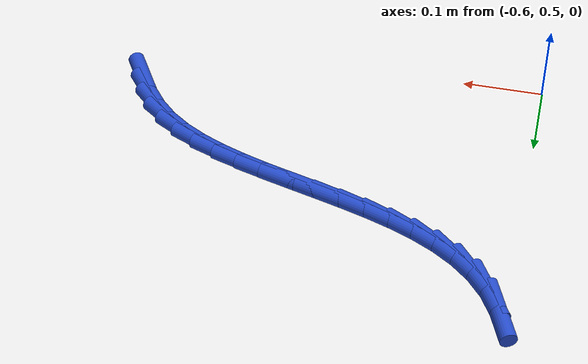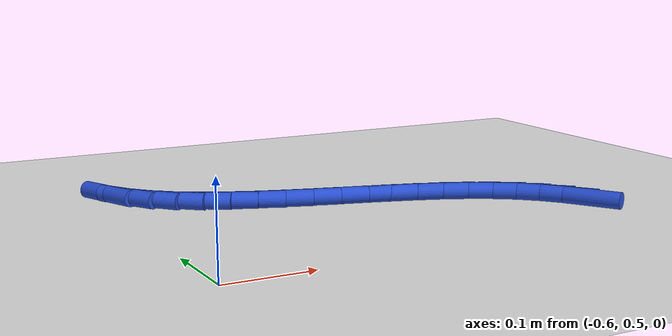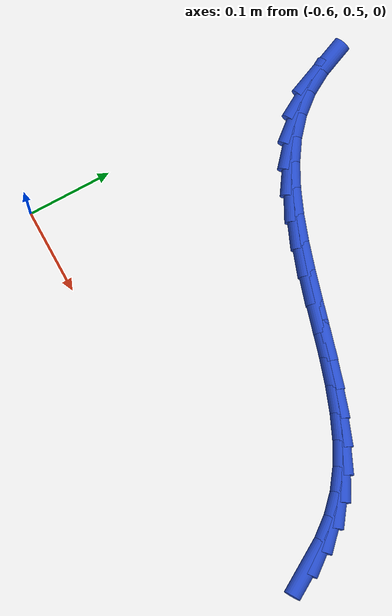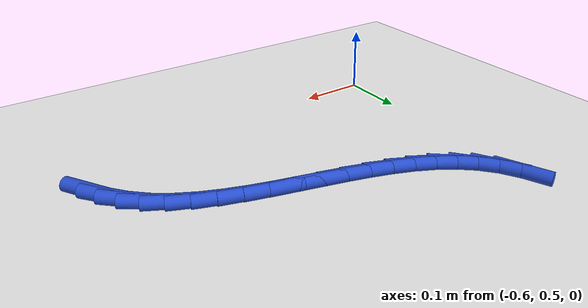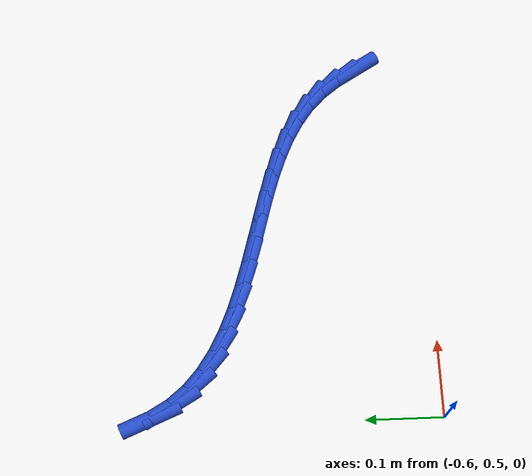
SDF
<sdf version="1.6">
 <world name="default">
  <model name="ground_plane">
   <static>1</static>
   <link name="link">
    <collision name="collision">
     <geometry><plane><normal>0 0 1</normal><size>100 100</size></plane></geometry>
     <surface><friction><ode><mu>100</mu><mu2>50</mu2></ode></friction></surface>
    </collision>
    <visual name="visual">
     <cast_shadows>0</cast_shadows>
     <geometry><plane><normal>0 0 1</normal><size>100 100</size></plane></geometry>
     <material>
      <script><uri>file://media/materials/scripts/gazebo.material</uri><name>Gazebo/WhiteGlow</name></script>
     </material>
    </visual>
   </link>
  </model>
  <model name="line">
   <link name="link_19">
    <pose>-0.10426457547401001 0.5849099175474333 0.01 0 1.57 -1.0160486485261653</pose>
    <collision name="collision">
     <geometry><cylinder><radius>0.01</radius><length>0.08</length></cylinder></geometry>
    </collision>
    <visual name="visual">
     <material>
      <script><name>Gazebo/Blue</name><uri>file://media/materials/scripts/gazebo.material</uri></script>
     </material>
     <geometry><cylinder><radius>0.01</radius><length>0.08</length></cylinder></geometry>
    </visual>
   </link>
   <link name="link_20">
    <pose>-0.11935501939416912 0.6092628294881497 0.01 0 1.57 -0.8951726852559022</pose>
    <collision name="collision">
     <geometry><cylinder><radius>0.01</radius><length>0.08</length></cylinder></geometry>
    </collision>
    <visual name="visual">
     <material>
      <script><name>Gazebo/Blue</name><uri>file://media/materials/scripts/gazebo.material</uri></script>
     </material>
     <geometry><cylinder><radius>0.01</radius><length>0.08</length></cylinder></geometry>
    </visual>
   </link>
   <link name="link_21">
    <pose>-0.1370045280021883 0.6312848375143887 0.01 0 1.57 -0.7589405687826736</pose>
    <collision name="collision">
     <geometry><cylinder><radius>0.01</radius><length>0.08</length></cylinder></geometry>
    </collision>
    <visual name="visual">
     <material>
      <script><name>Gazebo/Blue</name><uri>file://media/materials/scripts/gazebo.material</uri></script>
     </material>
     <geometry><cylinder><radius>0.01</radius><length>0.08</length></cylinder></geometry>
    </visual>
   </link>
   <link name="link_22">
    <pose>-0.15747717167615702 0.65070185049639 0.01 0 1.57 -0.6186227134365173</pose>
    <collision name="collision">
     <geometry><cylinder><radius>0.01</radius><length>0.08</length></cylinder></geometry>
    </collision>
    <visual name="visual">
     <material>
      <script><name>Gazebo/Blue</name><uri>file://media/materials/scripts/gazebo.material</uri></script>
     </material>
     <geometry><cylinder><radius>0.01</radius><length>0.08</length></cylinder></geometry>
    </visual>
   </link>
   <link name="link_23">
    <pose>-0.18089931364129738 0.6673744760878453 0.01 0 1.57 -0.501227249246571</pose>
    <collision name="collision">
     <geometry><cylinder><radius>0.01</radius><length>0.08</length></cylinder></geometry>
    </collision>
    <visual name="visual">
     <material>
      <script><name>Gazebo/Blue</name><uri>file://media/materials/scripts/gazebo.material</uri></script>
     </material>
     <geometry><cylinder><radius>0.01</radius><length>0.08</length></cylinder></geometry>
    </visual>
   </link>
   <link name="link_24">
    <pose>-0.2069193954601897 0.6816308028626623 0.01 0 1.57 -0.4108660897879239</pose>
    <collision name="collision">
     <geometry><cylinder><radius>0.01</radius><length>0.08</length></cylinder></geometry>
    </collision>
    <visual name="visual">
     <material>
      <script><name>Gazebo/Blue</name><uri>file://media/materials/scripts/gazebo.material</uri></script>
     </material>
     <geometry><cylinder><radius>0.01</radius><length>0.08</length></cylinder></geometry>
    </visual>
   </link>
   <link name="link_25">
    <pose>-0.23508224733027594 0.6939002672517421 0.01 0 1.57 -0.34454319343561757</pose>
    <collision name="collision">
     <geometry><cylinder><radius>0.01</radius><length>0.08</length></cylinder></geometry>
    </collision>
    <visual name="visual">
     <material>
      <script><name>Gazebo/Blue</name><uri>file://media/materials/scripts/gazebo.material</uri></script>
     </material>
     <geometry><cylinder><radius>0.01</radius><length>0.08</length></cylinder></geometry>
    </visual>
   </link>
   <link name="link_26">
    <pose>-0.2649326994489988 0.704612305685987 0.01 0 1.57 -0.29908911575729025</pose>
    <collision name="collision">
     <geometry><cylinder><radius>0.01</radius><length>0.08</length></cylinder></geometry>
    </collision>
    <visual name="visual">
     <material>
      <script><name>Gazebo/Blue</name><uri>file://media/materials/scripts/gazebo.material</uri></script>
     </material>
     <geometry><cylinder><radius>0.01</radius><length>0.08</length></cylinder></geometry>
    </visual>
   </link>
   <link name="link_27">
    <pose>-0.29601558201380035 0.7141963545962977 0.01 0 1.57 -0.2719797004035659</pose>
    <collision name="collision">
     <geometry><cylinder><radius>0.01</radius><length>0.08</length></cylinder></geometry>
    </collision>
    <visual name="visual">
     <material>
      <script><name>Gazebo/Blue</name><uri>file://media/materials/scripts/gazebo.material</uri></script>
     </material>
     <geometry><cylinder><radius>0.01</radius><length>0.08</length></cylinder></geometry>
    </visual>
   </link>
   <link name="link_28">
    <pose>-0.32787572522212294 0.7230818504135762 0.01 0 1.57 -0.26160152540919646</pose>
    <collision name="collision">
     <geometry><cylinder><radius>0.01</radius><length>0.08</length></cylinder></geometry>
    </collision>
    <visual name="visual">
     <material>
      <script><name>Gazebo/Blue</name><uri>file://media/materials/scripts/gazebo.material</uri></script>
     </material>
     <geometry><cylinder><radius>0.01</radius><length>0.08</length></cylinder></geometry>
    </visual>
   </link>
   <link name="link_29">
    <pose>-0.36005795927140893 0.7316982295687235 0.01 0 1.57 -0.2672978482801051</pose>
    <collision name="collision">
     <geometry><cylinder><radius>0.01</radius><length>0.08</length></cylinder></geometry>
    </collision>
    <visual name="visual">
     <material>
      <script><name>Gazebo/Blue</name><uri>file://media/materials/scripts/gazebo.material</uri></script>
     </material>
     <geometry><cylinder><radius>0.01</radius><length>0.08</length></cylinder></geometry>
    </visual>
   </link>
   <link name="link_30">
    <pose>-0.3921071143591007 0.7404749284926415 0.01 0 1.57 -0.28936123270137243</pose>
    <collision name="collision">
     <geometry><cylinder><radius>0.01</radius><length>0.08</length></cylinder></geometry>
    </collision>
    <visual name="visual">
     <material>
      <script><name>Gazebo/Blue</name><uri>file://media/materials/scripts/gazebo.material</uri></script>
     </material>
     <geometry><cylinder><radius>0.01</radius><length>0.08</length></cylinder></geometry>
    </visual>
   </link>
   <link name="link_31">
    <pose>-0.4235680206826404 0.7498413836162315 0.01 0 1.57 -0.3290258023512551</pose>
    <collision name="collision">
     <geometry><cylinder><radius>0.01</radius><length>0.08</length></cylinder></geometry>
    </collision>
    <visual name="visual">
     <material>
      <script><name>Gazebo/Blue</name><uri>file://media/materials/scripts/gazebo.material</uri></script>
     </material>
     <geometry><cylinder><radius>0.01</radius><length>0.08</length></cylinder></geometry>
    </visual>
   </link>
   <link name="link_32">
    <pose>-0.4539855084394705 0.7602270313703948 0.01 0 1.57 -0.3884318092051939</pose>
    <collision name="collision">
     <geometry><cylinder><radius>0.01</radius><length>0.08</length></cylinder></geometry>
    </collision>
    <visual name="visual">
     <material>
      <script><name>Gazebo/Blue</name><uri>file://media/materials/scripts/gazebo.material</uri></script>
     </material>
     <geometry><cylinder><radius>0.01</radius><length>0.08</length></cylinder></geometry>
    </visual>
   </link>
   <link name="link_33">
    <pose>-0.48290440782703314 0.7720613081860329 0.01 0 1.57 -0.47044120005805695</pose>
    <collision name="collision">
     <geometry><cylinder><radius>0.01</radius><length>0.08</length></cylinder></geometry>
    </collision>
    <visual name="visual">
     <material>
      <script><name>Gazebo/Blue</name><uri>file://media/materials/scripts/gazebo.material</uri></script>
     </material>
     <geometry><cylinder><radius>0.01</radius><length>0.08</length></cylinder></geometry>
    </visual>
   </link>
   <link name="link_34">
    <pose>-0.5098695490427707 0.7857736504940473 0.01 0 1.57 -0.5780425654867221</pose>
    <collision name="collision">
     <geometry><cylinder><radius>0.01</radius><length>0.08</length></cylinder></geometry>
    </collision>
    <visual name="visual">
     <material>
      <script><name>Gazebo/Blue</name><uri>file://media/materials/scripts/gazebo.material</uri></script>
     </material>
     <geometry><cylinder><radius>0.01</radius><length>0.08</length></cylinder></geometry>
    </visual>
   </link>
   <link name="link_35">
    <pose>-0.5344257622841256 0.8017934947253396 0.01 0 1.57 -0.7129562302424629</pose>
    <collision name="collision">
     <geometry><cylinder><radius>0.01</radius><length>0.08</length></cylinder></geometry>
    </collision>
    <visual name="visual">
     <material>
      <script><name>Gazebo/Blue</name><uri>file://media/materials/scripts/gazebo.material</uri></script>
     </material>
     <geometry><cylinder><radius>0.01</radius><length>0.08</length></cylinder></geometry>
    </visual>
   </link>
   <link name="link_36">
    <pose>-0.55611787774854 0.8205502773108111 0.01 0 1.57 -0.873276985239991</pose>
    <collision name="collision">
     <geometry><cylinder><radius>0.01</radius><length>0.08</length></cylinder></geometry>
    </collision>
    <visual name="visual">
     <material>
      <script><name>Gazebo/Blue</name><uri>file://media/materials/scripts/gazebo.material</uri></script>
     </material>
     <geometry><cylinder><radius>0.01</radius><length>0.08</length></cylinder></geometry>
    </visual>
   </link>
   <link name="link_37">
    <pose>-0.5744907256334563 0.8424734346813634 0.01 0 1.57 -1.0436542021579869</pose>
    <collision name="collision">
     <geometry><cylinder><radius>0.01</radius><length>0.08</length></cylinder></geometry>
    </collision>
    <visual name="visual">
     <material>
      <script><name>Gazebo/Blue</name><uri>file://media/materials/scripts/gazebo.material</uri></script>
     </material>
     <geometry><cylinder><radius>0.01</radius><length>0.08</length></cylinder></geometry>
    </visual>
   </link>
   <link name="link_38">
    <pose>-0.5892523367080302 0.8678333482559238 0.01 0 1.57 -1.1774554467372966</pose>
    <collision name="collision">
     <geometry><cylinder><radius>0.01</radius><length>0.08</length></cylinder></geometry>
    </collision>
    <visual name="visual">
     <material>
      <script><name>Gazebo/Blue</name><uri>file://media/materials/scripts/gazebo.material</uri></script>
     </material>
     <geometry><cylinder><radius>0.01</radius><length>0.08</length></cylinder></geometry>
    </visual>
   </link>
  </model>
 </world>
</sdf>
